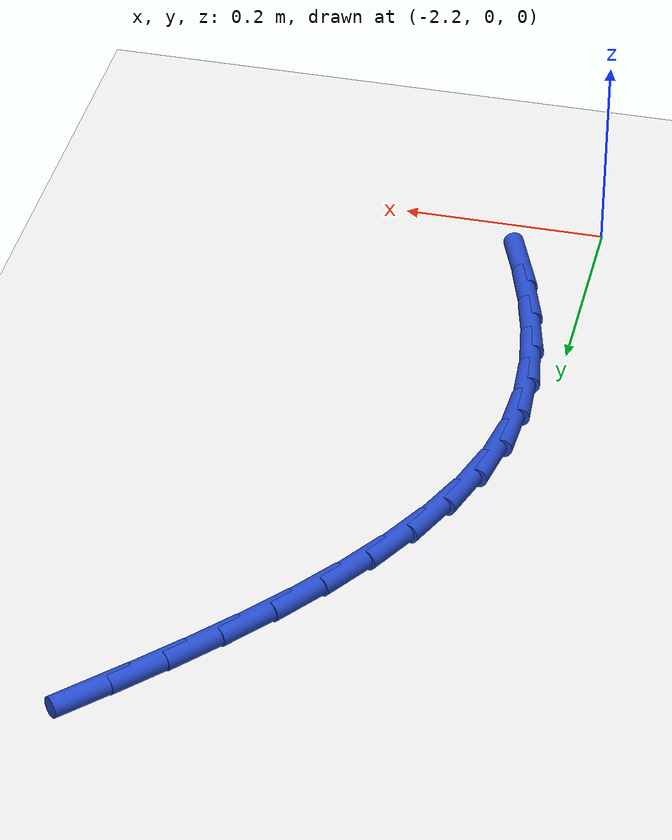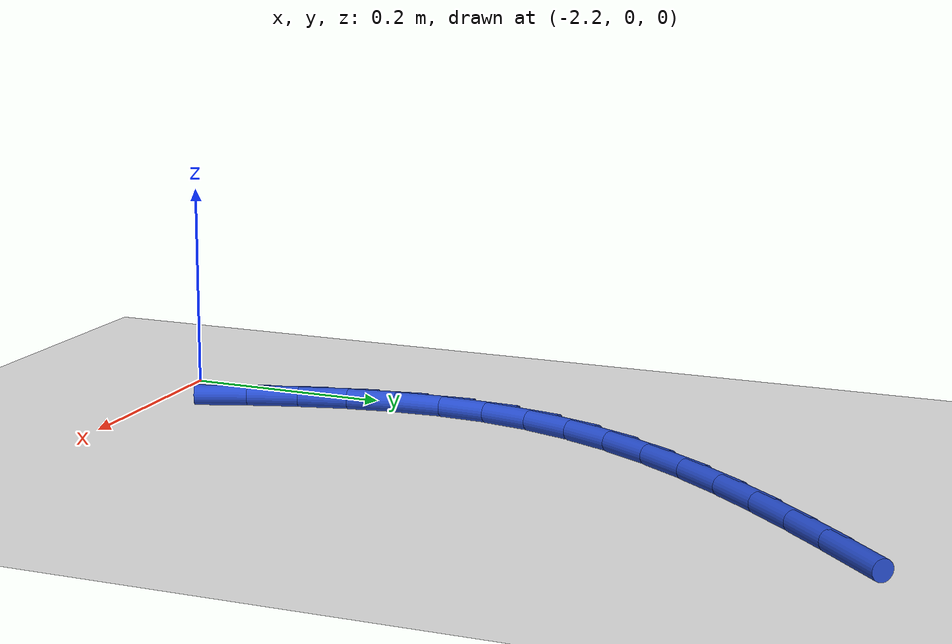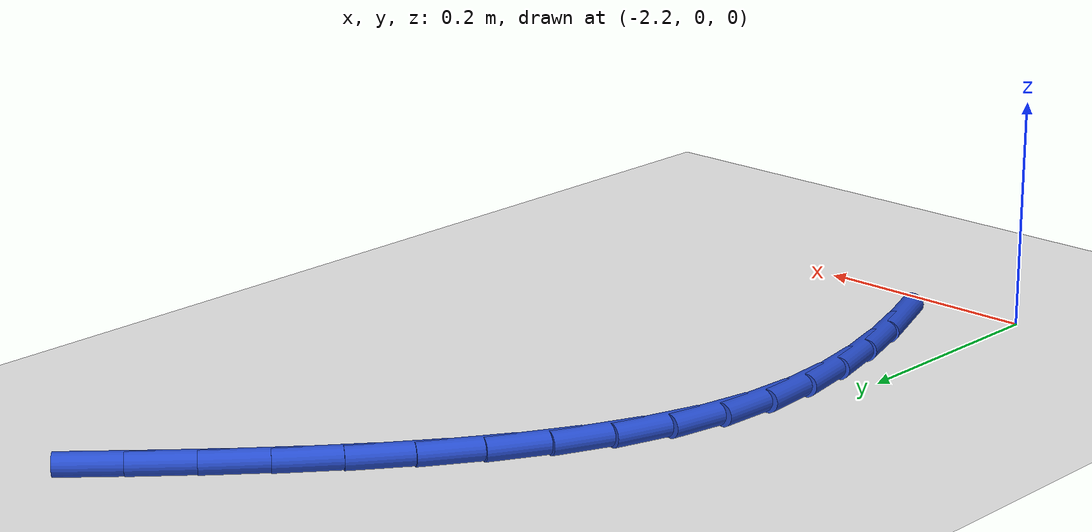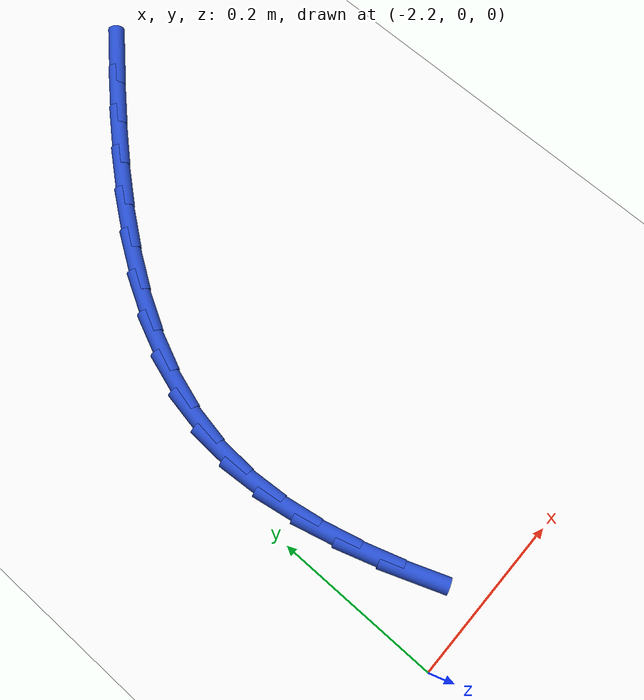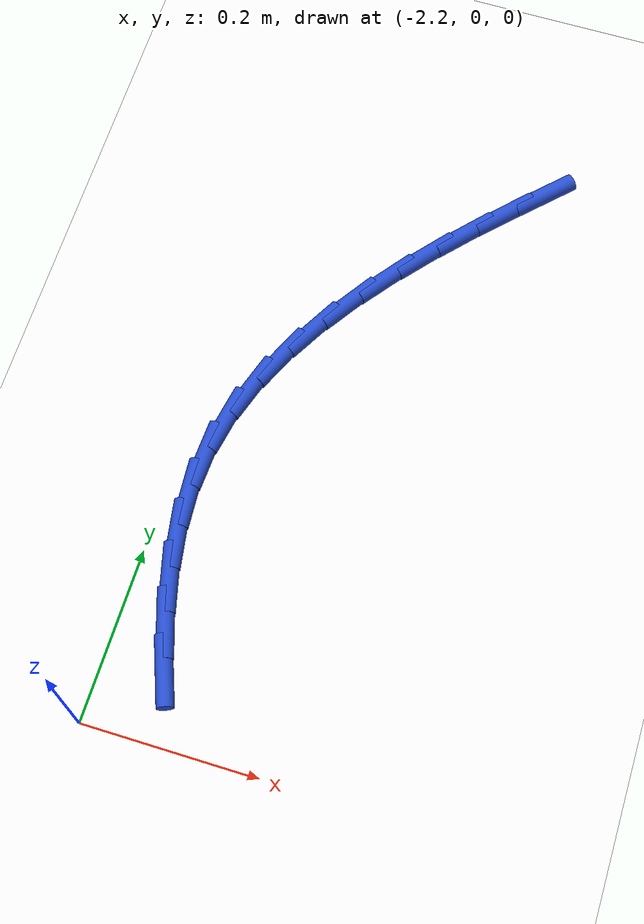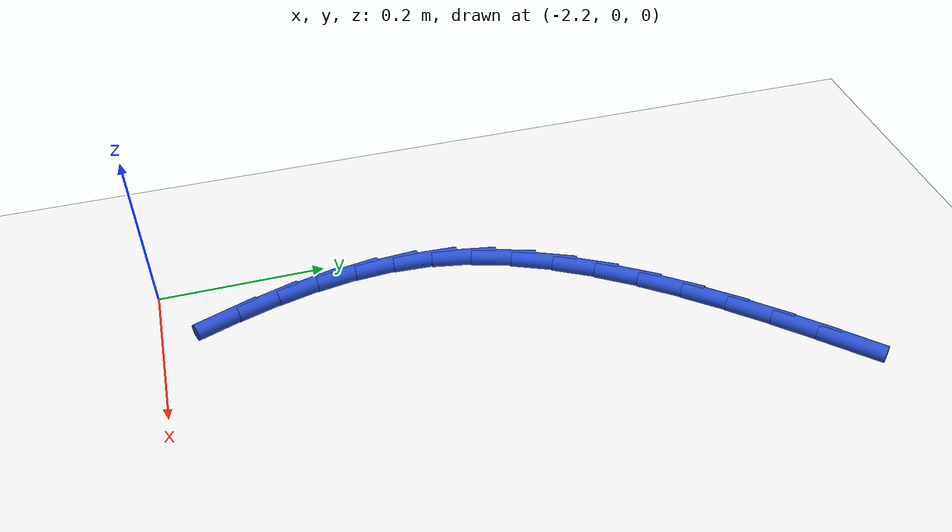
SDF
<sdf version="1.6">
 <world name="default">
  <model name="ground_plane">
   <static>1</static>
   <link name="link">
    <collision name="collision">
     <geometry><plane><normal>0 0 1</normal><size>100 100</size></plane></geometry>
     <surface><friction><ode><mu>100</mu><mu2>50</mu2></ode></friction></surface>
    </collision>
    <visual name="visual">
     <cast_shadows>0</cast_shadows>
     <geometry><plane><normal>0 0 1</normal><size>100 100</size></plane></geometry>
     <material>
      <script><uri>file://media/materials/scripts/gazebo.material</uri><name>Gazebo/WhiteGlow</name></script>
     </material>
    </visual>
   </link>
  </model>
  <model name="line">
   <link name="link_50">
    <pose>-1.8907722502622828 0.7595420954075962 0.01 0 1.57 0.7935804927620203</pose>
    <collision name="collision">
     <geometry><cylinder><radius>0.01</radius><length>0.08</length></cylinder></geometry>
    </collision>
    <visual name="visual">
     <material>
      <script><name>Gazebo/Blue</name><uri>file://media/materials/scripts/gazebo.material</uri></script>
     </material>
     <geometry><cylinder><radius>0.01</radius><length>0.08</length></cylinder></geometry>
    </visual>
   </link>
   <link name="link_51">
    <pose>-1.929093681913185 0.7205883587669186 0.01 0 1.57 0.8134036536104646</pose>
    <collision name="collision">
     <geometry><cylinder><radius>0.01</radius><length>0.08</length></cylinder></geometry>
    </collision>
    <visual name="visual">
     <material>
      <script><name>Gazebo/Blue</name><uri>file://media/materials/scripts/gazebo.material</uri></script>
     </material>
     <geometry><cylinder><radius>0.01</radius><length>0.08</length></cylinder></geometry>
    </visual>
   </link>
   <link name="link_52">
    <pose>-1.9670938455912603 0.6803978544377534 0.01 0 1.57 0.8417988020607013</pose>
    <collision name="collision">
     <geometry><cylinder><radius>0.01</radius><length>0.08</length></cylinder></geometry>
    </collision>
    <visual name="visual">
     <material>
      <script><name>Gazebo/Blue</name><uri>file://media/materials/scripts/gazebo.material</uri></script>
     </material>
     <geometry><cylinder><radius>0.01</radius><length>0.08</length></cylinder></geometry>
    </visual>
   </link>
   <link name="link_53">
    <pose>-2.004031010227659 0.6390401191198603 0.01 0 1.57 0.8795299221434283</pose>
    <collision name="collision">
     <geometry><cylinder><radius>0.01</radius><length>0.08</length></cylinder></geometry>
    </collision>
    <visual name="visual">
     <material>
      <script><name>Gazebo/Blue</name><uri>file://media/materials/scripts/gazebo.material</uri></script>
     </material>
     <geometry><cylinder><radius>0.01</radius><length>0.08</length></cylinder></geometry>
    </visual>
   </link>
   <link name="link_54">
    <pose>-2.0391614024693894 0.5965847997213864 0.01 0 1.57 0.9277751476774767</pose>
    <collision name="collision">
     <geometry><cylinder><radius>0.01</radius><length>0.08</length></cylinder></geometry>
    </collision>
    <visual name="visual">
     <material>
      <script><name>Gazebo/Blue</name><uri>file://media/materials/scripts/gazebo.material</uri></script>
     </material>
     <geometry><cylinder><radius>0.01</radius><length>0.08</length></cylinder></geometry>
    </visual>
   </link>
   <link name="link_55">
    <pose>-2.071741248963459 0.5531015431504803 0.01 0 1.57 0.9881429922730949</pose>
    <collision name="collision">
     <geometry><cylinder><radius>0.01</radius><length>0.08</length></cylinder></geometry>
    </collision>
    <visual name="visual">
     <material>
      <script><name>Gazebo/Blue</name><uri>file://media/materials/scripts/gazebo.material</uri></script>
     </material>
     <geometry><cylinder><radius>0.01</radius><length>0.08</length></cylinder></geometry>
    </visual>
   </link>
   <link name="link_56">
    <pose>-2.101026776356878 0.5086599963152904 0.01 0 1.57 1.0626196612322512</pose>
    <collision name="collision">
     <geometry><cylinder><radius>0.01</radius><length>0.08</length></cylinder></geometry>
    </collision>
    <visual name="visual">
     <material>
      <script><name>Gazebo/Blue</name><uri>file://media/materials/scripts/gazebo.material</uri></script>
     </material>
     <geometry><cylinder><radius>0.01</radius><length>0.08</length></cylinder></geometry>
    </visual>
   </link>
   <link name="link_57">
    <pose>-2.126274211296653 0.46332980612396424 0.01 0 1.57 1.153389817438891</pose>
    <collision name="collision">
     <geometry><cylinder><radius>0.01</radius><length>0.08</length></cylinder></geometry>
    </collision>
    <visual name="visual">
     <material>
      <script><name>Gazebo/Blue</name><uri>file://media/materials/scripts/gazebo.material</uri></script>
     </material>
     <geometry><cylinder><radius>0.01</radius><length>0.08</length></cylinder></geometry>
    </visual>
   </link>
   <link name="link_58">
    <pose>-2.146739780429794 0.4171806194846494 0.01 0 1.57 1.2624014794450267</pose>
    <collision name="collision">
     <geometry><cylinder><radius>0.01</radius><length>0.08</length></cylinder></geometry>
    </collision>
    <visual name="visual">
     <material>
      <script><name>Gazebo/Blue</name><uri>file://media/materials/scripts/gazebo.material</uri></script>
     </material>
     <geometry><cylinder><radius>0.01</radius><length>0.08</length></cylinder></geometry>
    </visual>
   </link>
   <link name="link_59">
    <pose>-2.161679710403307 0.37028208330549417 0.01 0 1.57 1.390270220413898</pose>
    <collision name="collision">
     <geometry><cylinder><radius>0.01</radius><length>0.08</length></cylinder></geometry>
    </collision>
    <visual name="visual">
     <material>
      <script><name>Gazebo/Blue</name><uri>file://media/materials/scripts/gazebo.material</uri></script>
     </material>
     <geometry><cylinder><radius>0.01</radius><length>0.08</length></cylinder></geometry>
    </visual>
   </link>
   <link name="link_60">
    <pose>-2.1703633667639335 0.32270382202001324 0.01 0 1.57 1.5234661409368055</pose>
    <collision name="collision">
     <geometry><cylinder><radius>0.01</radius><length>0.08</length></cylinder></geometry>
    </collision>
    <visual name="visual">
     <material>
      <script><name>Gazebo/Blue</name><uri>file://media/materials/scripts/gazebo.material</uri></script>
     </material>
     <geometry><cylinder><radius>0.01</radius><length>0.08</length></cylinder></geometry>
    </visual>
   </link>
   <link name="link_61">
    <pose>-2.1726458829603423 0.274514458081399 0.01 0 1.57 -1.4999964142771365</pose>
    <collision name="collision">
     <geometry><cylinder><radius>0.01</radius><length>0.08</length></cylinder></geometry>
    </collision>
    <visual name="visual">
     <material>
      <script><name>Gazebo/Blue</name><uri>file://media/materials/scripts/gazebo.material</uri></script>
     </material>
     <geometry><cylinder><radius>0.01</radius><length>0.08</length></cylinder></geometry>
    </visual>
   </link>
   <link name="link_62">
    <pose>-2.169189798257444 0.2257812328416652 0.01 0 1.57 -1.4002827319172693</pose>
    <collision name="collision">
     <geometry><cylinder><radius>0.01</radius><length>0.08</length></cylinder></geometry>
    </collision>
    <visual name="visual">
     <material>
      <script><name>Gazebo/Blue</name><uri>file://media/materials/scripts/gazebo.material</uri></script>
     </material>
     <geometry><cylinder><radius>0.01</radius><length>0.08</length></cylinder></geometry>
    </visual>
   </link>
   <link name="link_63">
    <pose>-2.1607165543204276 0.17657128689782473 0.01 0 1.57 -1.3189238547645024</pose>
    <collision name="collision">
     <geometry><cylinder><radius>0.01</radius><length>0.08</length></cylinder></geometry>
    </collision>
    <visual name="visual">
     <material>
      <script><name>Gazebo/Blue</name><uri>file://media/materials/scripts/gazebo.material</uri></script>
     </material>
     <geometry><cylinder><radius>0.01</radius><length>0.08</length></cylinder></geometry>
    </visual>
   </link>
   <link name="link_64">
    <pose>-2.1479475928144818 0.1269517608468904 0.01 0 1.57 -1.254653956326787</pose>
    <collision name="collision">
     <geometry><cylinder><radius>0.01</radius><length>0.08</length></cylinder></geometry>
    </collision>
    <visual name="visual">
     <material>
      <script><name>Gazebo/Blue</name><uri>file://media/materials/scripts/gazebo.material</uri></script>
     </material>
     <geometry><cylinder><radius>0.01</radius><length>0.08</length></cylinder></geometry>
    </visual>
   </link>
   <link name="link_65">
    <pose>-2.131604355404794 0.07698979528587435 0.01 0 1.57 -1.2058084031185647</pose>
    <collision name="collision">
     <geometry><cylinder><radius>0.01</radius><length>0.08</length></cylinder></geometry>
    </collision>
    <visual name="visual">
     <material>
      <script><name>Gazebo/Blue</name><uri>file://media/materials/scripts/gazebo.material</uri></script>
     </material>
     <geometry><cylinder><radius>0.01</radius><length>0.08</length></cylinder></geometry>
    </visual>
   </link>
  </model>
 </world>
</sdf>
